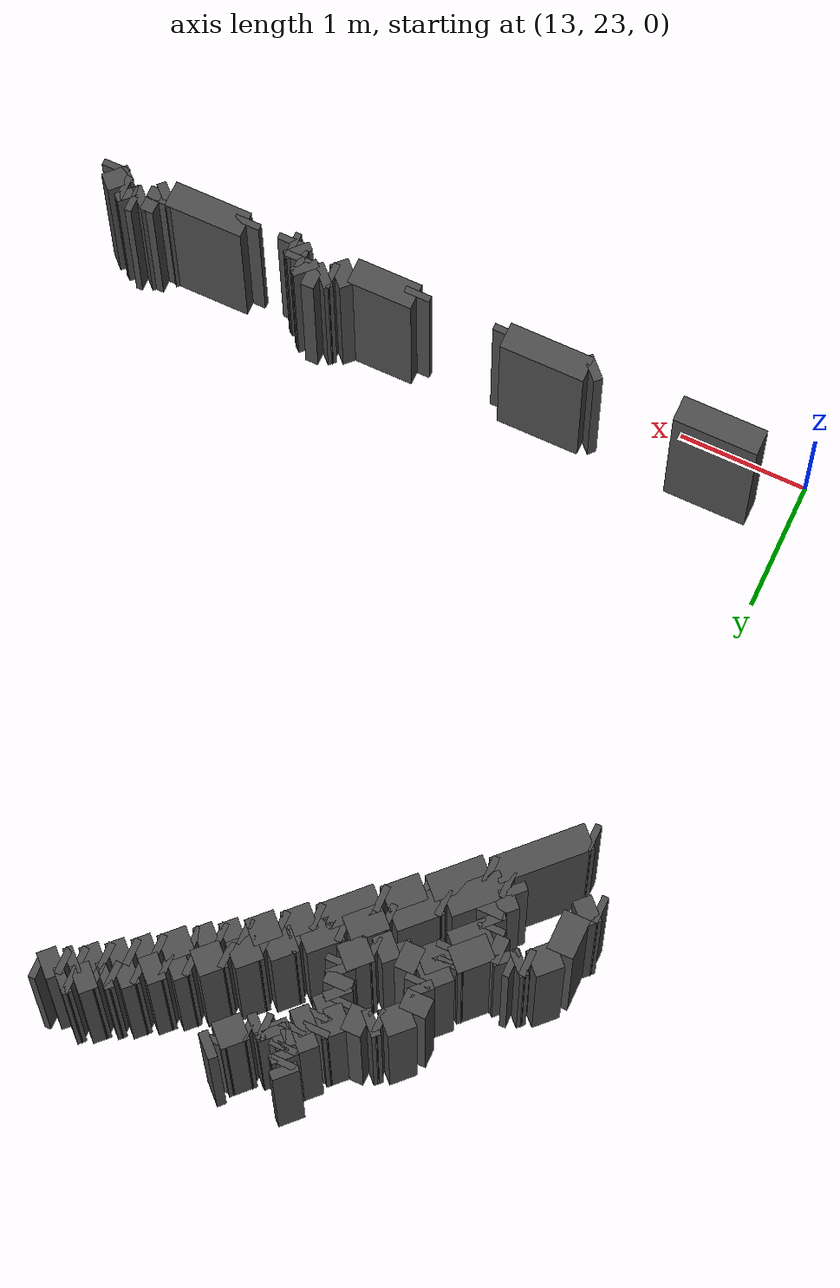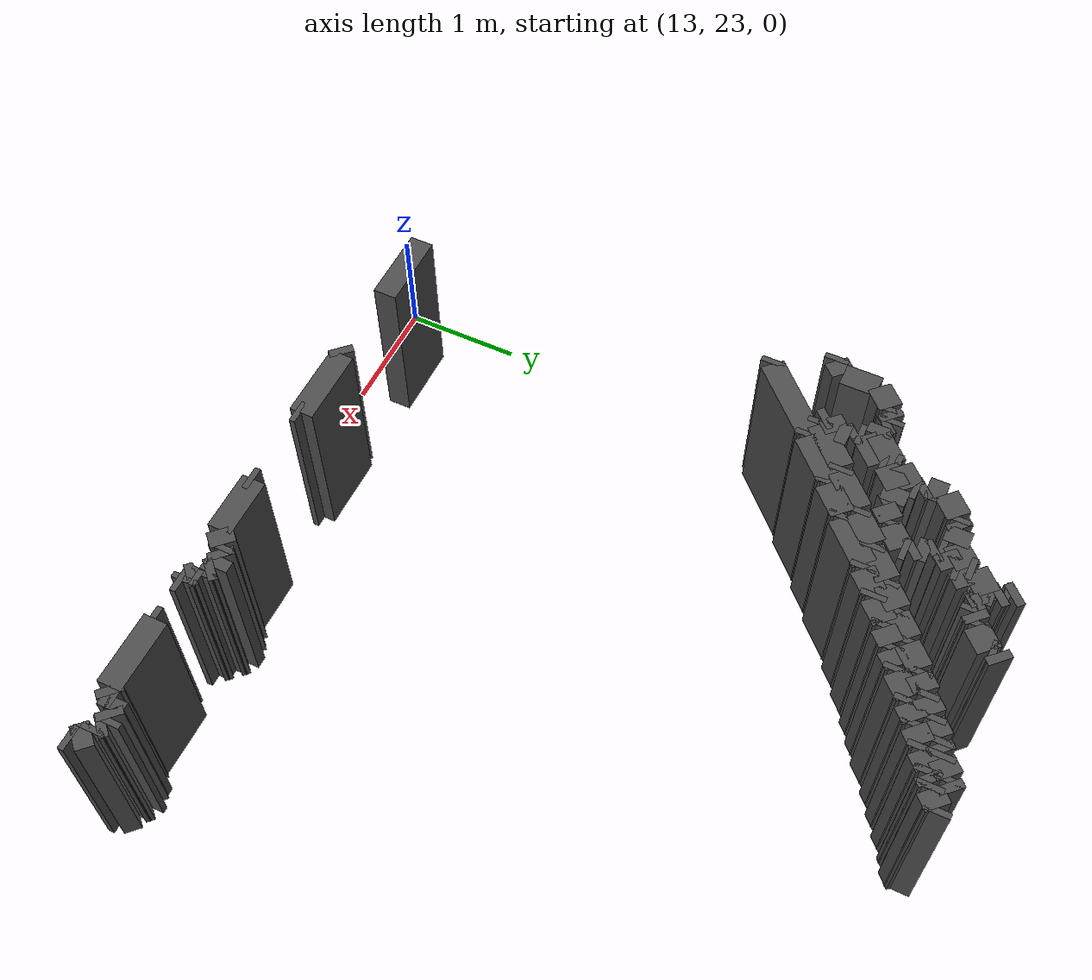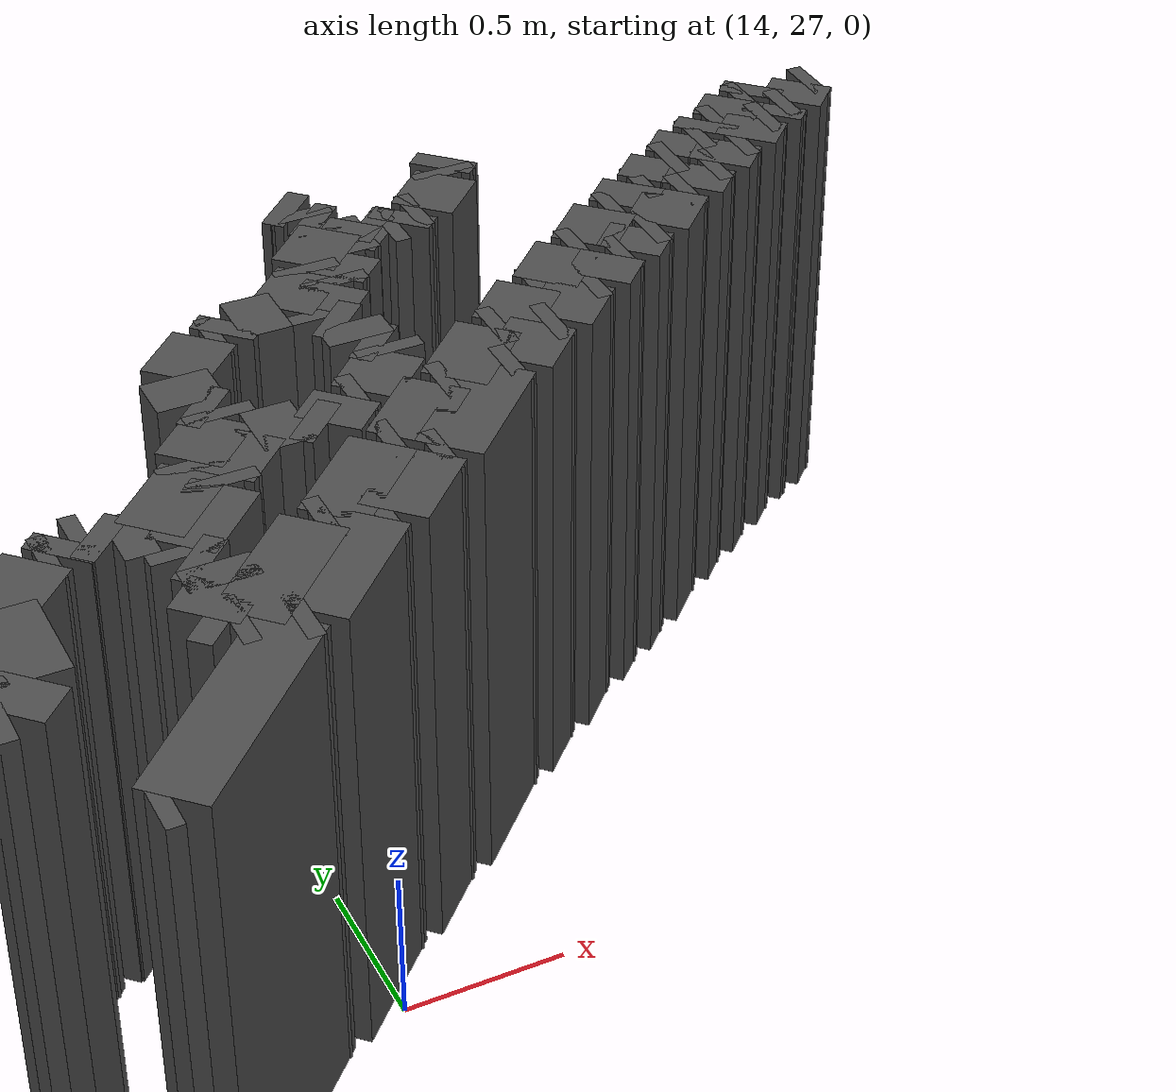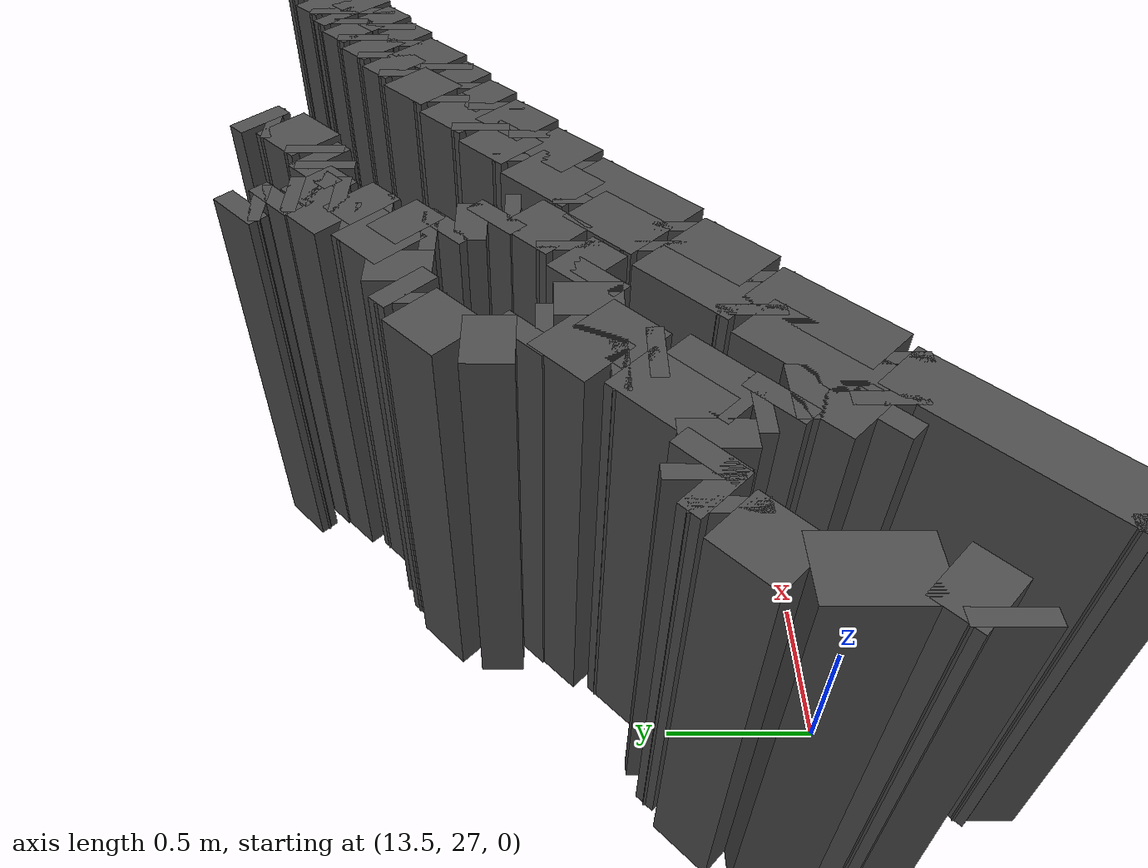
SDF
<sdf version="1.9">
 <model name="generated_walls">
  <static>true</static>
  <link name="wall_83_2">
   <pose>14.625 23.325 0.75 0 0 0.785</pose>
   <collision name="collision"><geometry><box><size>0.071 0.2 1.5</size></box></geometry></collision>
   <visual name="visual">
    <geometry><box><size>0.071 0.2 1.5</size></box></geometry>
    <material><ambient>0.3 0.3 0.3 1</ambient></material>
   </visual>
  </link>
  <link name="wall_83_3">
   <pose>14.975 23.350 0.75 0 0 0.000</pose>
   <collision name="collision"><geometry><box><size>0.650 0.2 1.5</size></box></geometry></collision>
   <visual name="visual">
    <geometry><box><size>0.650 0.2 1.5</size></box></geometry>
    <material><ambient>0.3 0.3 0.3 1</ambient></material>
   </visual>
  </link>
  <link name="wall_83_4">
   <pose>15.300 23.325 0.75 0 0 -1.571</pose>
   <collision name="collision"><geometry><box><size>0.050 0.2 1.5</size></box></geometry></collision>
   <visual name="visual">
    <geometry><box><size>0.050 0.2 1.5</size></box></geometry>
    <material><ambient>0.3 0.3 0.3 1</ambient></material>
   </visual>
  </link>
  <link name="wall_84_3">
   <pose>13.625 23.350 0.75 0 0 0.000</pose>
   <collision name="collision"><geometry><box><size>0.650 0.2 1.5</size></box></geometry></collision>
   <visual name="visual">
    <geometry><box><size>0.650 0.2 1.5</size></box></geometry>
    <material><ambient>0.3 0.3 0.3 1</ambient></material>
   </visual>
  </link>
  <link name="wall_161_332">
   <pose>12.975 26.950 0.75 0 0 0.000</pose>
   <collision name="collision"><geometry><box><size>0.050 0.2 1.5</size></box></geometry></collision>
   <visual name="visual">
    <geometry><box><size>0.050 0.2 1.5</size></box></geometry>
    <material><ambient>0.3 0.3 0.3 1</ambient></material>
   </visual>
  </link>
  <link name="wall_161_333">
   <pose>13.050 27.000 0.75 0 0 0.785</pose>
   <collision name="collision"><geometry><box><size>0.141 0.2 1.5</size></box></geometry></collision>
   <visual name="visual">
    <geometry><box><size>0.141 0.2 1.5</size></box></geometry>
    <material><ambient>0.3 0.3 0.3 1</ambient></material>
   </visual>
  </link>
  <link name="wall_161_334">
   <pose>13.100 27.200 0.75 0 0 1.571</pose>
   <collision name="collision"><geometry><box><size>0.300 0.2 1.5</size></box></geometry></collision>
   <visual name="visual">
    <geometry><box><size>0.300 0.2 1.5</size></box></geometry>
    <material><ambient>0.3 0.3 0.3 1</ambient></material>
   </visual>
  </link>
  <link name="wall_161_335">
   <pose>13.175 27.425 0.75 0 0 0.785</pose>
   <collision name="collision"><geometry><box><size>0.212 0.2 1.5</size></box></geometry></collision>
   <visual name="visual">
    <geometry><box><size>0.212 0.2 1.5</size></box></geometry>
    <material><ambient>0.3 0.3 0.3 1</ambient></material>
   </visual>
  </link>
  <link name="wall_161_336">
   <pose>13.275 27.500 0.75 0 0 0.000</pose>
   <collision name="collision"><geometry><box><size>0.050 0.2 1.5</size></box></geometry></collision>
   <visual name="visual">
    <geometry><box><size>0.050 0.2 1.5</size></box></geometry>
    <material><ambient>0.3 0.3 0.3 1</ambient></material>
   </visual>
  </link>
  <link name="wall_161_337">
   <pose>13.325 27.525 0.75 0 0 0.785</pose>
   <collision name="collision"><geometry><box><size>0.071 0.2 1.5</size></box></geometry></collision>
   <visual name="visual">
    <geometry><box><size>0.071 0.2 1.5</size></box></geometry>
    <material><ambient>0.3 0.3 0.3 1</ambient></material>
   </visual>
  </link>
  <link name="wall_161_338">
   <pose>13.375 27.550 0.75 0 0 0.000</pose>
   <collision name="collision"><geometry><box><size>0.050 0.2 1.5</size></box></geometry></collision>
   <visual name="visual">
    <geometry><box><size>0.050 0.2 1.5</size></box></geometry>
    <material><ambient>0.3 0.3 0.3 1</ambient></material>
   </visual>
  </link>
  <link name="wall_161_339">
   <pose>13.425 27.525 0.75 0 0 -0.785</pose>
   <collision name="collision"><geometry><box><size>0.071 0.2 1.5</size></box></geometry></collision>
   <visual name="visual">
    <geometry><box><size>0.071 0.2 1.5</size></box></geometry>
    <material><ambient>0.3 0.3 0.3 1</ambient></material>
   </visual>
  </link>
  <link name="wall_161_340">
   <pose>13.500 27.500 0.75 0 0 0.000</pose>
   <collision name="collision"><geometry><box><size>0.100 0.2 1.5</size></box></geometry></collision>
   <visual name="visual">
    <geometry><box><size>0.100 0.2 1.5</size></box></geometry>
    <material><ambient>0.3 0.3 0.3 1</ambient></material>
   </visual>
  </link>
  <link name="wall_161_341">
   <pose>13.650 27.600 0.75 0 0 0.785</pose>
   <collision name="collision"><geometry><box><size>0.283 0.2 1.5</size></box></geometry></collision>
   <visual name="visual">
    <geometry><box><size>0.283 0.2 1.5</size></box></geometry>
    <material><ambient>0.3 0.3 0.3 1</ambient></material>
   </visual>
  </link>
  <link name="wall_161_342">
   <pose>13.750 27.725 0.75 0 0 1.571</pose>
   <collision name="collision"><geometry><box><size>0.050 0.2 1.5</size></box></geometry></collision>
   <visual name="visual">
    <geometry><box><size>0.050 0.2 1.5</size></box></geometry>
    <material><ambient>0.3 0.3 0.3 1</ambient></material>
   </visual>
  </link>
  <link name="wall_161_343">
   <pose>13.825 27.825 0.75 0 0 0.785</pose>
   <collision name="collision"><geometry><box><size>0.212 0.2 1.5</size></box></geometry></collision>
   <visual name="visual">
    <geometry><box><size>0.212 0.2 1.5</size></box></geometry>
    <material><ambient>0.3 0.3 0.3 1</ambient></material>
   </visual>
  </link>
  <link name="wall_161_344">
   <pose>13.900 27.925 0.75 0 0 1.571</pose>
   <collision name="collision"><geometry><box><size>0.050 0.2 1.5</size></box></geometry></collision>
   <visual name="visual">
    <geometry><box><size>0.050 0.2 1.5</size></box></geometry>
    <material><ambient>0.3 0.3 0.3 1</ambient></material>
   </visual>
  </link>
  <link name="wall_161_345">
   <pose>13.875 27.975 0.75 0 0 2.356</pose>
   <collision name="collision"><geometry><box><size>0.071 0.2 1.5</size></box></geometry></collision>
   <visual name="visual">
    <geometry><box><size>0.071 0.2 1.5</size></box></geometry>
    <material><ambient>0.3 0.3 0.3 1</ambient></material>
   </visual>
  </link>
  <link name="wall_161_346">
   <pose>13.850 28.075 0.75 0 0 1.571</pose>
   <collision name="collision"><geometry><box><size>0.150 0.2 1.5</size></box></geometry></collision>
   <visual name="visual">
    <geometry><box><size>0.150 0.2 1.5</size></box></geometry>
    <material><ambient>0.3 0.3 0.3 1</ambient></material>
   </visual>
  </link>
  <link name="wall_161_347">
   <pose>13.925 28.225 0.75 0 0 0.785</pose>
   <collision name="collision"><geometry><box><size>0.212 0.2 1.5</size></box></geometry></collision>
   <visual name="visual">
    <geometry><box><size>0.212 0.2 1.5</size></box></geometry>
    <material><ambient>0.3 0.3 0.3 1</ambient></material>
   </visual>
  </link>
  <link name="wall_161_348">
   <pose>14.025 28.300 0.75 0 0 0.000</pose>
   <collision name="collision"><geometry><box><size>0.050 0.2 1.5</size></box></geometry></collision>
   <visual name="visual">
    <geometry><box><size>0.050 0.2 1.5</size></box></geometry>
    <material><ambient>0.3 0.3 0.3 1</ambient></material>
   </visual>
  </link>
  <link name="wall_161_349">
   <pose>14.075 28.325 0.75 0 0 0.785</pose>
   <collision name="collision"><geometry><box><size>0.071 0.2 1.5</size></box></geometry></collision>
   <visual name="visual">
    <geometry><box><size>0.071 0.2 1.5</size></box></geometry>
    <material><ambient>0.3 0.3 0.3 1</ambient></material>
   </visual>
  </link>
  <link name="wall_161_350">
   <pose>14.175 28.350 0.75 0 0 0.000</pose>
   <collision name="collision"><geometry><box><size>0.150 0.2 1.5</size></box></geometry></collision>
   <visual name="visual">
    <geometry><box><size>0.150 0.2 1.5</size></box></geometry>
    <material><ambient>0.3 0.3 0.3 1</ambient></material>
   </visual>
  </link>
  <link name="wall_161_351">
   <pose>14.325 28.425 0.75 0 0 0.785</pose>
   <collision name="collision"><geometry><box><size>0.212 0.2 1.5</size></box></geometry></collision>
   <visual name="visual">
    <geometry><box><size>0.212 0.2 1.5</size></box></geometry>
    <material><ambient>0.3 0.3 0.3 1</ambient></material>
   </visual>
  </link>
  <link name="wall_161_352">
   <pose>14.400 28.525 0.75 0 0 1.571</pose>
   <collision name="collision"><geometry><box><size>0.050 0.2 1.5</size></box></geometry></collision>
   <visual name="visual">
    <geometry><box><size>0.050 0.2 1.5</size></box></geometry>
    <material><ambient>0.3 0.3 0.3 1</ambient></material>
   </visual>
  </link>
  <link name="wall_161_353">
   <pose>14.475 28.625 0.75 0 0 0.785</pose>
   <collision name="collision"><geometry><box><size>0.212 0.2 1.5</size></box></geometry></collision>
   <visual name="visual">
    <geometry><box><size>0.212 0.2 1.5</size></box></geometry>
    <material><ambient>0.3 0.3 0.3 1</ambient></material>
   </visual>
  </link>
  <link name="wall_161_354">
   <pose>14.550 28.725 0.75 0 0 1.571</pose>
   <collision name="collision"><geometry><box><size>0.050 0.2 1.5</size></box></geometry></collision>
   <visual name="visual">
    <geometry><box><size>0.050 0.2 1.5</size></box></geometry>
    <material><ambient>0.3 0.3 0.3 1</ambient></material>
   </visual>
  </link>
  <link name="wall_161_355">
   <pose>14.525 28.775 0.75 0 0 2.356</pose>
   <collision name="collision"><geometry><box><size>0.071 0.2 1.5</size></box></geometry></collision>
   <visual name="visual">
    <geometry><box><size>0.071 0.2 1.5</size></box></geometry>
    <material><ambient>0.3 0.3 0.3 1</ambient></material>
   </visual>
  </link>
  <link name="wall_161_356">
   <pose>14.500 28.825 0.75 0 0 1.571</pose>
   <collision name="collision"><geometry><box><size>0.050 0.2 1.5</size></box></geometry></collision>
   <visual name="visual">
    <geometry><box><size>0.050 0.2 1.5</size></box></geometry>
    <material><ambient>0.3 0.3 0.3 1</ambient></material>
   </visual>
  </link>
  <link name="wall_161_357">
   <pose>14.475 28.875 0.75 0 0 2.356</pose>
   <collision name="collision"><geometry><box><size>0.071 0.2 1.5</size></box></geometry></collision>
   <visual name="visual">
    <geometry><box><size>0.071 0.2 1.5</size></box></geometry>
    <material><ambient>0.3 0.3 0.3 1</ambient></material>
   </visual>
  </link>
  <link name="wall_161_494">
   <pose>15.025 28.925 0.75 0 0 -2.356</pose>
   <collision name="collision"><geometry><box><size>0.071 0.2 1.5</size></box></geometry></collision>
   <visual name="visual">
    <geometry><box><size>0.071 0.2 1.5</size></box></geometry>
    <material><ambient>0.3 0.3 0.3 1</ambient></material>
   </visual>
  </link>
  <link name="wall_161_495">
   <pose>15.000 28.875 0.75 0 0 -1.571</pose>
   <collision name="collision"><geometry><box><size>0.050 0.2 1.5</size></box></geometry></collision>
   <visual name="visual">
    <geometry><box><size>0.050 0.2 1.5</size></box></geometry>
    <material><ambient>0.3 0.3 0.3 1</ambient></material>
   </visual>
  </link>
  <link name="wall_161_496">
   <pose>14.925 28.775 0.75 0 0 -2.356</pose>
   <collision name="collision"><geometry><box><size>0.212 0.2 1.5</size></box></geometry></collision>
   <visual name="visual">
    <geometry><box><size>0.212 0.2 1.5</size></box></geometry>
    <material><ambient>0.3 0.3 0.3 1</ambient></material>
   </visual>
  </link>
  <link name="wall_161_497">
   <pose>14.825 28.700 0.75 0 0 3.142</pose>
   <collision name="collision"><geometry><box><size>0.050 0.2 1.5</size></box></geometry></collision>
   <visual name="visual">
    <geometry><box><size>0.050 0.2 1.5</size></box></geometry>
    <material><ambient>0.3 0.3 0.3 1</ambient></material>
   </visual>
  </link>
  <link name="wall_161_498">
   <pose>14.775 28.675 0.75 0 0 -2.356</pose>
   <collision name="collision"><geometry><box><size>0.071 0.2 1.5</size></box></geometry></collision>
   <visual name="visual">
    <geometry><box><size>0.071 0.2 1.5</size></box></geometry>
    <material><ambient>0.3 0.3 0.3 1</ambient></material>
   </visual>
  </link>
  <link name="wall_161_499">
   <pose>14.725 28.650 0.75 0 0 3.142</pose>
   <collision name="collision"><geometry><box><size>0.050 0.2 1.5</size></box></geometry></collision>
   <visual name="visual">
    <geometry><box><size>0.050 0.2 1.5</size></box></geometry>
    <material><ambient>0.3 0.3 0.3 1</ambient></material>
   </visual>
  </link>
  <link name="wall_161_500">
   <pose>14.675 28.675 0.75 0 0 2.356</pose>
   <collision name="collision"><geometry><box><size>0.071 0.2 1.5</size></box></geometry></collision>
   <visual name="visual">
    <geometry><box><size>0.071 0.2 1.5</size></box></geometry>
    <material><ambient>0.3 0.3 0.3 1</ambient></material>
   </visual>
  </link>
  <link name="wall_161_501">
   <pose>14.600 28.650 0.75 0 0 -2.356</pose>
   <collision name="collision"><geometry><box><size>0.141 0.2 1.5</size></box></geometry></collision>
   <visual name="visual">
    <geometry><box><size>0.141 0.2 1.5</size></box></geometry>
    <material><ambient>0.3 0.3 0.3 1</ambient></material>
   </visual>
  </link>
  <link name="wall_161_502">
   <pose>14.550 28.575 0.75 0 0 -1.571</pose>
   <collision name="collision"><geometry><box><size>0.050 0.2 1.5</size></box></geometry></collision>
   <visual name="visual">
    <geometry><box><size>0.050 0.2 1.5</size></box></geometry>
    <material><ambient>0.3 0.3 0.3 1</ambient></material>
   </visual>
  </link>
  <link name="wall_161_503">
   <pose>14.500 28.500 0.75 0 0 -2.356</pose>
   <collision name="collision"><geometry><box><size>0.141 0.2 1.5</size></box></geometry></collision>
   <visual name="visual">
    <geometry><box><size>0.141 0.2 1.5</size></box></geometry>
    <material><ambient>0.3 0.3 0.3 1</ambient></material>
   </visual>
  </link>
  <link name="wall_161_504">
   <pose>14.450 28.425 0.75 0 0 -1.571</pose>
   <collision name="collision"><geometry><box><size>0.050 0.2 1.5</size></box></geometry></collision>
   <visual name="visual">
    <geometry><box><size>0.050 0.2 1.5</size></box></geometry>
    <material><ambient>0.3 0.3 0.3 1</ambient></material>
   </visual>
  </link>
  <link name="wall_161_505">
   <pose>14.400 28.350 0.75 0 0 -2.356</pose>
   <collision name="collision"><geometry><box><size>0.141 0.2 1.5</size></box></geometry></collision>
   <visual name="visual">
    <geometry><box><size>0.141 0.2 1.5</size></box></geometry>
    <material><ambient>0.3 0.3 0.3 1</ambient></material>
   </visual>
  </link>
  <link name="wall_161_506">
   <pose>14.350 28.275 0.75 0 0 -1.571</pose>
   <collision name="collision"><geometry><box><size>0.050 0.2 1.5</size></box></geometry></collision>
   <visual name="visual">
    <geometry><box><size>0.050 0.2 1.5</size></box></geometry>
    <material><ambient>0.3 0.3 0.3 1</ambient></material>
   </visual>
  </link>
  <link name="wall_161_507">
   <pose>14.375 28.225 0.75 0 0 -0.785</pose>
   <collision name="collision"><geometry><box><size>0.071 0.2 1.5</size></box></geometry></collision>
   <visual name="visual">
    <geometry><box><size>0.071 0.2 1.5</size></box></geometry>
    <material><ambient>0.3 0.3 0.3 1</ambient></material>
   </visual>
  </link>
  <link name="wall_161_508">
   <pose>14.400 28.150 0.75 0 0 -1.571</pose>
   <collision name="collision"><geometry><box><size>0.100 0.2 1.5</size></box></geometry></collision>
   <visual name="visual">
    <geometry><box><size>0.100 0.2 1.5</size></box></geometry>
    <material><ambient>0.3 0.3 0.3 1</ambient></material>
   </visual>
  </link>
  <link name="wall_161_509">
   <pose>14.425 28.075 0.75 0 0 -0.785</pose>
   <collision name="collision"><geometry><box><size>0.071 0.2 1.5</size></box></geometry></collision>
   <visual name="visual">
    <geometry><box><size>0.071 0.2 1.5</size></box></geometry>
    <material><ambient>0.3 0.3 0.3 1</ambient></material>
   </visual>
  </link>
  <link name="wall_161_510">
   <pose>14.450 28.025 0.75 0 0 -1.571</pose>
   <collision name="collision"><geometry><box><size>0.050 0.2 1.5</size></box></geometry></collision>
   <visual name="visual">
    <geometry><box><size>0.050 0.2 1.5</size></box></geometry>
    <material><ambient>0.3 0.3 0.3 1</ambient></material>
   </visual>
  </link>
  <link name="wall_161_511">
   <pose>14.375 27.925 0.75 0 0 -2.356</pose>
   <collision name="collision"><geometry><box><size>0.212 0.2 1.5</size></box></geometry></collision>
   <visual name="visual">
    <geometry><box><size>0.212 0.2 1.5</size></box></geometry>
    <material><ambient>0.3 0.3 0.3 1</ambient></material>
   </visual>
  </link>
  <link name="wall_161_512">
   <pose>14.275 27.850 0.75 0 0 3.142</pose>
   <collision name="collision"><geometry><box><size>0.050 0.2 1.5</size></box></geometry></collision>
   <visual name="visual">
    <geometry><box><size>0.050 0.2 1.5</size></box></geometry>
    <material><ambient>0.3 0.3 0.3 1</ambient></material>
   </visual>
  </link>
  <link name="wall_161_513">
   <pose>14.200 27.800 0.75 0 0 -2.356</pose>
   <collision name="collision"><geometry><box><size>0.141 0.2 1.5</size></box></geometry></collision>
   <visual name="visual">
    <geometry><box><size>0.141 0.2 1.5</size></box></geometry>
    <material><ambient>0.3 0.3 0.3 1</ambient></material>
   </visual>
  </link>
  <link name="wall_161_514">
   <pose>14.125 27.775 0.75 0 0 2.356</pose>
   <collision name="collision"><geometry><box><size>0.071 0.2 1.5</size></box></geometry></collision>
   <visual name="visual">
    <geometry><box><size>0.071 0.2 1.5</size></box></geometry>
    <material><ambient>0.3 0.3 0.3 1</ambient></material>
   </visual>
  </link>
  <link name="wall_161_515">
   <pose>14.025 27.800 0.75 0 0 3.142</pose>
   <collision name="collision"><geometry><box><size>0.150 0.2 1.5</size></box></geometry></collision>
   <visual name="visual">
    <geometry><box><size>0.150 0.2 1.5</size></box></geometry>
    <material><ambient>0.3 0.3 0.3 1</ambient></material>
   </visual>
  </link>
  <link name="wall_161_516">
   <pose>13.875 27.725 0.75 0 0 -2.356</pose>
   <collision name="collision"><geometry><box><size>0.212 0.2 1.5</size></box></geometry></collision>
   <visual name="visual">
    <geometry><box><size>0.212 0.2 1.5</size></box></geometry>
    <material><ambient>0.3 0.3 0.3 1</ambient></material>
   </visual>
  </link>
  <link name="wall_161_517">
   <pose>13.800 27.625 0.75 0 0 -1.571</pose>
   <collision name="collision"><geometry><box><size>0.050 0.2 1.5</size></box></geometry></collision>
   <visual name="visual">
    <geometry><box><size>0.050 0.2 1.5</size></box></geometry>
    <material><ambient>0.3 0.3 0.3 1</ambient></material>
   </visual>
  </link>
  <link name="wall_161_518">
   <pose>13.700 27.500 0.75 0 0 -2.356</pose>
   <collision name="collision"><geometry><box><size>0.283 0.2 1.5</size></box></geometry></collision>
   <visual name="visual">
    <geometry><box><size>0.283 0.2 1.5</size></box></geometry>
    <material><ambient>0.3 0.3 0.3 1</ambient></material>
   </visual>
  </link>
  <link name="wall_161_519">
   <pose>13.600 27.375 0.75 0 0 -1.571</pose>
   <collision name="collision"><geometry><box><size>0.050 0.2 1.5</size></box></geometry></collision>
   <visual name="visual">
    <geometry><box><size>0.050 0.2 1.5</size></box></geometry>
    <material><ambient>0.3 0.3 0.3 1</ambient></material>
   </visual>
  </link>
  <link name="wall_161_520">
   <pose>13.625 27.325 0.75 0 0 -0.785</pose>
   <collision name="collision"><geometry><box><size>0.071 0.2 1.5</size></box></geometry></collision>
   <visual name="visual">
    <geometry><box><size>0.071 0.2 1.5</size></box></geometry>
    <material><ambient>0.3 0.3 0.3 1</ambient></material>
   </visual>
  </link>
  <link name="wall_161_521">
   <pose>13.650 27.250 0.75 0 0 -1.571</pose>
   <collision name="collision"><geometry><box><size>0.100 0.2 1.5</size></box></geometry></collision>
   <visual name="visual">
    <geometry><box><size>0.100 0.2 1.5</size></box></geometry>
    <material><ambient>0.3 0.3 0.3 1</ambient></material>
   </visual>
  </link>
  <link name="wall_161_522">
   <pose>13.600 27.150 0.75 0 0 -2.356</pose>
   <collision name="collision"><geometry><box><size>0.141 0.2 1.5</size></box></geometry></collision>
   <visual name="visual">
    <geometry><box><size>0.141 0.2 1.5</size></box></geometry>
    <material><ambient>0.3 0.3 0.3 1</ambient></material>
   </visual>
  </link>
  <link name="wall_161_523">
   <pose>13.575 27.075 0.75 0 0 -0.785</pose>
   <collision name="collision"><geometry><box><size>0.071 0.2 1.5</size></box></geometry></collision>
   <visual name="visual">
    <geometry><box><size>0.071 0.2 1.5</size></box></geometry>
    <material><ambient>0.3 0.3 0.3 1</ambient></material>
   </visual>
  </link>
  <link name="wall_161_524">
   <pose>13.625 27.050 0.75 0 0 0.000</pose>
   <collision name="collision"><geometry><box><size>0.050 0.2 1.5</size></box></geometry></collision>
   <visual name="visual">
    <geometry><box><size>0.050 0.2 1.5</size></box></geometry>
    <material><ambient>0.3 0.3 0.3 1</ambient></material>
   </visual>
  </link>
  <link name="wall_161_525">
   <pose>13.800 27.200 0.75 0 0 0.785</pose>
   <collision name="collision"><geometry><box><size>0.424 0.2 1.5</size></box></geometry></collision>
   <visual name="visual">
    <geometry><box><size>0.424 0.2 1.5</size></box></geometry>
    <material><ambient>0.3 0.3 0.3 1</ambient></material>
   </visual>
  </link>
  <link name="wall_161_526">
   <pose>13.975 27.350 0.75 0 0 0.000</pose>
   <collision name="collision"><geometry><box><size>0.050 0.2 1.5</size></box></geometry></collision>
   <visual name="visual">
    <geometry><box><size>0.050 0.2 1.5</size></box></geometry>
    <material><ambient>0.3 0.3 0.3 1</ambient></material>
   </visual>
  </link>
  <link name="wall_161_527">
   <pose>14.125 27.475 0.75 0 0 0.785</pose>
   <collision name="collision"><geometry><box><size>0.354 0.2 1.5</size></box></geometry></collision>
   <visual name="visual">
    <geometry><box><size>0.354 0.2 1.5</size></box></geometry>
    <material><ambient>0.3 0.3 0.3 1</ambient></material>
   </visual>
  </link>
  <link name="wall_161_528">
   <pose>14.275 27.600 0.75 0 0 0.000</pose>
   <collision name="collision"><geometry><box><size>0.050 0.2 1.5</size></box></geometry></collision>
   <visual name="visual">
    <geometry><box><size>0.050 0.2 1.5</size></box></geometry>
    <material><ambient>0.3 0.3 0.3 1</ambient></material>
   </visual>
  </link>
  <link name="wall_161_529">
   <pose>14.400 27.700 0.75 0 0 0.785</pose>
   <collision name="collision"><geometry><box><size>0.283 0.2 1.5</size></box></geometry></collision>
   <visual name="visual">
    <geometry><box><size>0.283 0.2 1.5</size></box></geometry>
    <material><ambient>0.3 0.3 0.3 1</ambient></material>
   </visual>
  </link>
  <link name="wall_161_530">
   <pose>14.525 27.800 0.75 0 0 0.000</pose>
   <collision name="collision"><geometry><box><size>0.050 0.2 1.5</size></box></geometry></collision>
   <visual name="visual">
    <geometry><box><size>0.050 0.2 1.5</size></box></geometry>
    <material><ambient>0.3 0.3 0.3 1</ambient></material>
   </visual>
  </link>
  <link name="wall_161_531">
   <pose>14.650 27.900 0.75 0 0 0.785</pose>
   <collision name="collision"><geometry><box><size>0.283 0.2 1.5</size></box></geometry></collision>
   <visual name="visual">
    <geometry><box><size>0.283 0.2 1.5</size></box></geometry>
    <material><ambient>0.3 0.3 0.3 1</ambient></material>
   </visual>
  </link>
  <link name="wall_161_532">
   <pose>14.775 28.000 0.75 0 0 0.000</pose>
   <collision name="collision"><geometry><box><size>0.050 0.2 1.5</size></box></geometry></collision>
   <visual name="visual">
    <geometry><box><size>0.050 0.2 1.5</size></box></geometry>
    <material><ambient>0.3 0.3 0.3 1</ambient></material>
   </visual>
  </link>
  <link name="wall_161_533">
   <pose>14.875 28.075 0.75 0 0 0.785</pose>
   <collision name="collision"><geometry><box><size>0.212 0.2 1.5</size></box></geometry></collision>
   <visual name="visual">
    <geometry><box><size>0.212 0.2 1.5</size></box></geometry>
    <material><ambient>0.3 0.3 0.3 1</ambient></material>
   </visual>
  </link>
  <link name="wall_161_534">
   <pose>14.975 28.150 0.75 0 0 0.000</pose>
   <collision name="collision"><geometry><box><size>0.050 0.2 1.5</size></box></geometry></collision>
   <visual name="visual">
    <geometry><box><size>0.050 0.2 1.5</size></box></geometry>
    <material><ambient>0.3 0.3 0.3 1</ambient></material>
   </visual>
  </link>
  <link name="wall_161_535">
   <pose>15.075 28.225 0.75 0 0 0.785</pose>
   <collision name="collision"><geometry><box><size>0.212 0.2 1.5</size></box></geometry></collision>
   <visual name="visual">
    <geometry><box><size>0.212 0.2 1.5</size></box></geometry>
    <material><ambient>0.3 0.3 0.3 1</ambient></material>
   </visual>
  </link>
  <link name="wall_161_536">
   <pose>15.175 28.300 0.75 0 0 0.000</pose>
   <collision name="collision"><geometry><box><size>0.050 0.2 1.5</size></box></geometry></collision>
   <visual name="visual">
    <geometry><box><size>0.050 0.2 1.5</size></box></geometry>
    <material><ambient>0.3 0.3 0.3 1</ambient></material>
   </visual>
  </link>
  <link name="wall_161_537">
   <pose>15.275 28.375 0.75 0 0 0.785</pose>
   <collision name="collision"><geometry><box><size>0.212 0.2 1.5</size></box></geometry></collision>
   <visual name="visual">
    <geometry><box><size>0.212 0.2 1.5</size></box></geometry>
    <material><ambient>0.3 0.3 0.3 1</ambient></material>
   </visual>
  </link>
  <link name="wall_161_538">
   <pose>15.375 28.450 0.75 0 0 0.000</pose>
   <collision name="collision"><geometry><box><size>0.050 0.2 1.5</size></box></geometry></collision>
   <visual name="visual">
    <geometry><box><size>0.050 0.2 1.5</size></box></geometry>
    <material><ambient>0.3 0.3 0.3 1</ambient></material>
   </visual>
  </link>
  <link name="wall_161_539">
   <pose>15.450 28.500 0.75 0 0 0.785</pose>
   <collision name="collision"><geometry><box><size>0.141 0.2 1.5</size></box></geometry></collision>
   <visual name="visual">
    <geometry><box><size>0.141 0.2 1.5</size></box></geometry>
    <material><ambient>0.3 0.3 0.3 1</ambient></material>
   </visual>
  </link>
  <link name="wall_161_540">
   <pose>15.525 28.550 0.75 0 0 0.000</pose>
   <collision name="collision"><geometry><box><size>0.050 0.2 1.5</size></box></geometry></collision>
   <visual name="visual">
    <geometry><box><size>0.050 0.2 1.5</size></box></geometry>
    <material><ambient>0.3 0.3 0.3 1</ambient></material>
   </visual>
  </link>
  <link name="wall_161_541">
   <pose>15.600 28.600 0.75 0 0 0.785</pose>
   <collision name="collision"><geometry><box><size>0.141 0.2 1.5</size></box></geometry></collision>
   <visual name="visual">
    <geometry><box><size>0.141 0.2 1.5</size></box></geometry>
    <material><ambient>0.3 0.3 0.3 1</ambient></material>
   </visual>
  </link>
  <link name="wall_161_542">
   <pose>15.675 28.650 0.75 0 0 0.000</pose>
   <collision name="collision"><geometry><box><size>0.050 0.2 1.5</size></box></geometry></collision>
   <visual name="visual">
    <geometry><box><size>0.050 0.2 1.5</size></box></geometry>
    <material><ambient>0.3 0.3 0.3 1</ambient></material>
   </visual>
  </link>
  <link name="wall_161_543">
   <pose>15.750 28.700 0.75 0 0 0.785</pose>
   <collision name="collision"><geometry><box><size>0.141 0.2 1.5</size></box></geometry></collision>
   <visual name="visual">
    <geometry><box><size>0.141 0.2 1.5</size></box></geometry>
    <material><ambient>0.3 0.3 0.3 1</ambient></material>
   </visual>
  </link>
  <link name="wall_161_544">
   <pose>15.825 28.750 0.75 0 0 0.000</pose>
   <collision name="collision"><geometry><box><size>0.050 0.2 1.5</size></box></geometry></collision>
   <visual name="visual">
    <geometry><box><size>0.050 0.2 1.5</size></box></geometry>
    <material><ambient>0.3 0.3 0.3 1</ambient></material>
   </visual>
  </link>
  <link name="wall_161_545">
   <pose>15.875 28.775 0.75 0 0 0.785</pose>
   <collision name="collision"><geometry><box><size>0.071 0.2 1.5</size></box></geometry></collision>
   <visual name="visual">
    <geometry><box><size>0.071 0.2 1.5</size></box></geometry>
    <material><ambient>0.3 0.3 0.3 1</ambient></material>
   </visual>
  </link>
  <link name="wall_161_546">
   <pose>15.925 28.800 0.75 0 0 0.000</pose>
   <collision name="collision"><geometry><box><size>0.050 0.2 1.5</size></box></geometry></collision>
   <visual name="visual">
    <geometry><box><size>0.050 0.2 1.5</size></box></geometry>
    <material><ambient>0.3 0.3 0.3 1</ambient></material>
   </visual>
  </link>
  <link name="wall_161_547">
   <pose>16.000 28.850 0.75 0 0 0.785</pose>
   <collision name="collision"><geometry><box><size>0.141 0.2 1.5</size></box></geometry></collision>
   <visual name="visual">
    <geometry><box><size>0.141 0.2 1.5</size></box></geometry>
    <material><ambient>0.3 0.3 0.3 1</ambient></material>
   </visual>
  </link>
  <link name="wall_161_548">
   <pose>16.075 28.900 0.75 0 0 0.000</pose>
   <collision name="collision"><geometry><box><size>0.050 0.2 1.5</size></box></geometry></collision>
   <visual name="visual">
    <geometry><box><size>0.050 0.2 1.5</size></box></geometry>
    <material><ambient>0.3 0.3 0.3 1</ambient></material>
   </visual>
  </link>
  <link name="wall_161_549">
   <pose>16.125 28.925 0.75 0 0 0.785</pose>
   <collision name="collision"><geometry><box><size>0.071 0.2 1.5</size></box></geometry></collision>
   <visual name="visual">
    <geometry><box><size>0.071 0.2 1.5</size></box></geometry>
    <material><ambient>0.3 0.3 0.3 1</ambient></material>
   </visual>
  </link>
  <link name="wall_161_679">
   <pose>16.325 28.900 0.75 0 0 3.142</pose>
   <collision name="collision"><geometry><box><size>0.050 0.2 1.5</size></box></geometry></collision>
   <visual name="visual">
    <geometry><box><size>0.050 0.2 1.5</size></box></geometry>
    <material><ambient>0.3 0.3 0.3 1</ambient></material>
   </visual>
  </link>
  <link name="wall_161_680">
   <pose>16.250 28.850 0.75 0 0 -2.356</pose>
   <collision name="collision"><geometry><box><size>0.141 0.2 1.5</size></box></geometry></collision>
   <visual name="visual">
    <geometry><box><size>0.141 0.2 1.5</size></box></geometry>
    <material><ambient>0.3 0.3 0.3 1</ambient></material>
   </visual>
  </link>
  <link name="wall_161_681">
   <pose>16.175 28.800 0.75 0 0 3.142</pose>
   <collision name="collision"><geometry><box><size>0.050 0.2 1.5</size></box></geometry></collision>
   <visual name="visual">
    <geometry><box><size>0.050 0.2 1.5</size></box></geometry>
    <material><ambient>0.3 0.3 0.3 1</ambient></material>
   </visual>
  </link>
  <link name="wall_161_682">
   <pose>16.125 28.775 0.75 0 0 -2.356</pose>
   <collision name="collision"><geometry><box><size>0.071 0.2 1.5</size></box></geometry></collision>
   <visual name="visual">
    <geometry><box><size>0.071 0.2 1.5</size></box></geometry>
    <material><ambient>0.3 0.3 0.3 1</ambient></material>
   </visual>
  </link>
  <link name="wall_161_683">
   <pose>16.075 28.750 0.75 0 0 3.142</pose>
   <collision name="collision"><geometry><box><size>0.050 0.2 1.5</size></box></geometry></collision>
   <visual name="visual">
    <geometry><box><size>0.050 0.2 1.5</size></box></geometry>
    <material><ambient>0.3 0.3 0.3 1</ambient></material>
   </visual>
  </link>
  <link name="wall_161_684">
   <pose>16.000 28.700 0.75 0 0 -2.356</pose>
   <collision name="collision"><geometry><box><size>0.141 0.2 1.5</size></box></geometry></collision>
   <visual name="visual">
    <geometry><box><size>0.141 0.2 1.5</size></box></geometry>
    <material><ambient>0.3 0.3 0.3 1</ambient></material>
   </visual>
  </link>
  <link name="wall_161_685">
   <pose>15.925 28.650 0.75 0 0 3.142</pose>
   <collision name="collision"><geometry><box><size>0.050 0.2 1.5</size></box></geometry></collision>
   <visual name="visual">
    <geometry><box><size>0.050 0.2 1.5</size></box></geometry>
    <material><ambient>0.3 0.3 0.3 1</ambient></material>
   </visual>
  </link>
  <link name="wall_161_686">
   <pose>15.850 28.600 0.75 0 0 -2.356</pose>
   <collision name="collision"><geometry><box><size>0.141 0.2 1.5</size></box></geometry></collision>
   <visual name="visual">
    <geometry><box><size>0.141 0.2 1.5</size></box></geometry>
    <material><ambient>0.3 0.3 0.3 1</ambient></material>
   </visual>
  </link>
  <link name="wall_161_687">
   <pose>15.775 28.550 0.75 0 0 3.142</pose>
   <collision name="collision"><geometry><box><size>0.050 0.2 1.5</size></box></geometry></collision>
   <visual name="visual">
    <geometry><box><size>0.050 0.2 1.5</size></box></geometry>
    <material><ambient>0.3 0.3 0.3 1</ambient></material>
   </visual>
  </link>
  <link name="wall_161_688">
   <pose>15.700 28.500 0.75 0 0 -2.356</pose>
   <collision name="collision"><geometry><box><size>0.141 0.2 1.5</size></box></geometry></collision>
   <visual name="visual">
    <geometry><box><size>0.141 0.2 1.5</size></box></geometry>
    <material><ambient>0.3 0.3 0.3 1</ambient></material>
   </visual>
  </link>
  <link name="wall_161_689">
   <pose>15.625 28.450 0.75 0 0 3.142</pose>
   <collision name="collision"><geometry><box><size>0.050 0.2 1.5</size></box></geometry></collision>
   <visual name="visual">
    <geometry><box><size>0.050 0.2 1.5</size></box></geometry>
    <material><ambient>0.3 0.3 0.3 1</ambient></material>
   </visual>
  </link>
  <link name="wall_161_690">
   <pose>15.525 28.375 0.75 0 0 -2.356</pose>
   <collision name="collision"><geometry><box><size>0.212 0.2 1.5</size></box></geometry></collision>
   <visual name="visual">
    <geometry><box><size>0.212 0.2 1.5</size></box></geometry>
    <material><ambient>0.3 0.3 0.3 1</ambient></material>
   </visual>
  </link>
  <link name="wall_161_691">
   <pose>15.425 28.300 0.75 0 0 3.142</pose>
   <collision name="collision"><geometry><box><size>0.050 0.2 1.5</size></box></geometry></collision>
   <visual name="visual">
    <geometry><box><size>0.050 0.2 1.5</size></box></geometry>
    <material><ambient>0.3 0.3 0.3 1</ambient></material>
   </visual>
  </link>
  <link name="wall_161_692">
   <pose>15.350 28.250 0.75 0 0 -2.356</pose>
   <collision name="collision"><geometry><box><size>0.141 0.2 1.5</size></box></geometry></collision>
   <visual name="visual">
    <geometry><box><size>0.141 0.2 1.5</size></box></geometry>
    <material><ambient>0.3 0.3 0.3 1</ambient></material>
   </visual>
  </link>
  <link name="wall_161_693">
   <pose>15.275 28.200 0.75 0 0 3.142</pose>
   <collision name="collision"><geometry><box><size>0.050 0.2 1.5</size></box></geometry></collision>
   <visual name="visual">
    <geometry><box><size>0.050 0.2 1.5</size></box></geometry>
    <material><ambient>0.3 0.3 0.3 1</ambient></material>
   </visual>
  </link>
  <link name="wall_161_694">
   <pose>15.200 28.150 0.75 0 0 -2.356</pose>
   <collision name="collision"><geometry><box><size>0.141 0.2 1.5</size></box></geometry></collision>
   <visual name="visual">
    <geometry><box><size>0.141 0.2 1.5</size></box></geometry>
    <material><ambient>0.3 0.3 0.3 1</ambient></material>
   </visual>
  </link>
  <link name="wall_161_695">
   <pose>15.125 28.100 0.75 0 0 3.142</pose>
   <collision name="collision"><geometry><box><size>0.050 0.2 1.5</size></box></geometry></collision>
   <visual name="visual">
    <geometry><box><size>0.050 0.2 1.5</size></box></geometry>
    <material><ambient>0.3 0.3 0.3 1</ambient></material>
   </visual>
  </link>
  <link name="wall_161_696">
   <pose>15.025 28.025 0.75 0 0 -2.356</pose>
   <collision name="collision"><geometry><box><size>0.212 0.2 1.5</size></box></geometry></collision>
   <visual name="visual">
    <geometry><box><size>0.212 0.2 1.5</size></box></geometry>
    <material><ambient>0.3 0.3 0.3 1</ambient></material>
   </visual>
  </link>
  <link name="wall_161_697">
   <pose>14.925 27.950 0.75 0 0 3.142</pose>
   <collision name="collision"><geometry><box><size>0.050 0.2 1.5</size></box></geometry></collision>
   <visual name="visual">
    <geometry><box><size>0.050 0.2 1.5</size></box></geometry>
    <material><ambient>0.3 0.3 0.3 1</ambient></material>
   </visual>
  </link>
  <link name="wall_161_698">
   <pose>14.825 27.875 0.75 0 0 -2.356</pose>
   <collision name="collision"><geometry><box><size>0.212 0.2 1.5</size></box></geometry></collision>
   <visual name="visual">
    <geometry><box><size>0.212 0.2 1.5</size></box></geometry>
    <material><ambient>0.3 0.3 0.3 1</ambient></material>
   </visual>
  </link>
  <link name="wall_161_699">
   <pose>14.725 27.800 0.75 0 0 3.142</pose>
   <collision name="collision"><geometry><box><size>0.050 0.2 1.5</size></box></geometry></collision>
   <visual name="visual">
    <geometry><box><size>0.050 0.2 1.5</size></box></geometry>
    <material><ambient>0.3 0.3 0.3 1</ambient></material>
   </visual>
  </link>
  <link name="wall_161_700">
   <pose>14.550 27.650 0.75 0 0 -2.356</pose>
   <collision name="collision"><geometry><box><size>0.424 0.2 1.5</size></box></geometry></collision>
   <visual name="visual">
    <geometry><box><size>0.424 0.2 1.5</size></box></geometry>
    <material><ambient>0.3 0.3 0.3 1</ambient></material>
   </visual>
  </link>
  <link name="wall_161_701">
   <pose>14.375 27.500 0.75 0 0 3.142</pose>
   <collision name="collision"><geometry><box><size>0.050 0.2 1.5</size></box></geometry></collision>
   <visual name="visual">
    <geometry><box><size>0.050 0.2 1.5</size></box></geometry>
    <material><ambient>0.3 0.3 0.3 1</ambient></material>
   </visual>
  </link>
  <link name="wall_161_702">
   <pose>14.250 27.400 0.75 0 0 -2.356</pose>
   <collision name="collision"><geometry><box><size>0.283 0.2 1.5</size></box></geometry></collision>
   <visual name="visual">
    <geometry><box><size>0.283 0.2 1.5</size></box></geometry>
    <material><ambient>0.3 0.3 0.3 1</ambient></material>
   </visual>
  </link>
  <link name="wall_161_703">
   <pose>14.125 27.300 0.75 0 0 3.142</pose>
   <collision name="collision"><geometry><box><size>0.050 0.2 1.5</size></box></geometry></collision>
   <visual name="visual">
    <geometry><box><size>0.050 0.2 1.5</size></box></geometry>
    <material><ambient>0.3 0.3 0.3 1</ambient></material>
   </visual>
  </link>
  <link name="wall_161_704">
   <pose>13.950 27.150 0.75 0 0 -2.356</pose>
   <collision name="collision"><geometry><box><size>0.424 0.2 1.5</size></box></geometry></collision>
   <visual name="visual">
    <geometry><box><size>0.424 0.2 1.5</size></box></geometry>
    <material><ambient>0.3 0.3 0.3 1</ambient></material>
   </visual>
  </link>
  <link name="wall_161_705">
   <pose>13.775 27.000 0.75 0 0 3.142</pose>
   <collision name="collision"><geometry><box><size>0.050 0.2 1.5</size></box></geometry></collision>
   <visual name="visual">
    <geometry><box><size>0.050 0.2 1.5</size></box></geometry>
    <material><ambient>0.3 0.3 0.3 1</ambient></material>
   </visual>
  </link>
  <link name="wall_161_706">
   <pose>13.500 26.750 0.75 0 0 -2.356</pose>
   <collision name="collision"><geometry><box><size>0.707 0.2 1.5</size></box></geometry></collision>
   <visual name="visual">
    <geometry><box><size>0.707 0.2 1.5</size></box></geometry>
    <material><ambient>0.3 0.3 0.3 1</ambient></material>
   </visual>
  </link>
  <link name="wall_161_707">
   <pose>13.225 26.500 0.75 0 0 3.142</pose>
   <collision name="collision"><geometry><box><size>0.050 0.2 1.5</size></box></geometry></collision>
   <visual name="visual">
    <geometry><box><size>0.050 0.2 1.5</size></box></geometry>
    <material><ambient>0.3 0.3 0.3 1</ambient></material>
   </visual>
  </link>
  <link name="wall_161_1867">
   <pose>16.000 23.325 0.75 0 0 1.571</pose>
   <collision name="collision"><geometry><box><size>0.050 0.2 1.5</size></box></geometry></collision>
   <visual name="visual">
    <geometry><box><size>0.050 0.2 1.5</size></box></geometry>
    <material><ambient>0.3 0.3 0.3 1</ambient></material>
   </visual>
  </link>
  <link name="wall_161_1868">
   <pose>16.250 23.350 0.75 0 0 0.000</pose>
   <collision name="collision"><geometry><box><size>0.500 0.2 1.5</size></box></geometry></collision>
   <visual name="visual">
    <geometry><box><size>0.500 0.2 1.5</size></box></geometry>
    <material><ambient>0.3 0.3 0.3 1</ambient></material>
   </visual>
  </link>
  <link name="wall_161_1869">
   <pose>16.550 23.400 0.75 0 0 0.785</pose>
   <collision name="collision"><geometry><box><size>0.141 0.2 1.5</size></box></geometry></collision>
   <visual name="visual">
    <geometry><box><size>0.141 0.2 1.5</size></box></geometry>
    <material><ambient>0.3 0.3 0.3 1</ambient></material>
   </visual>
  </link>
  <link name="wall_161_1870">
   <pose>16.625 23.450 0.75 0 0 0.000</pose>
   <collision name="collision"><geometry><box><size>0.050 0.2 1.5</size></box></geometry></collision>
   <visual name="visual">
    <geometry><box><size>0.050 0.2 1.5</size></box></geometry>
    <material><ambient>0.3 0.3 0.3 1</ambient></material>
   </visual>
  </link>
  <link name="wall_161_1871">
   <pose>16.675 23.475 0.75 0 0 0.785</pose>
   <collision name="collision"><geometry><box><size>0.071 0.2 1.5</size></box></geometry></collision>
   <visual name="visual">
    <geometry><box><size>0.071 0.2 1.5</size></box></geometry>
    <material><ambient>0.3 0.3 0.3 1</ambient></material>
   </visual>
  </link>
  <link name="wall_161_1872">
   <pose>16.750 23.500 0.75 0 0 0.000</pose>
   <collision name="collision"><geometry><box><size>0.100 0.2 1.5</size></box></geometry></collision>
   <visual name="visual">
    <geometry><box><size>0.100 0.2 1.5</size></box></geometry>
    <material><ambient>0.3 0.3 0.3 1</ambient></material>
   </visual>
  </link>
  <link name="wall_161_1873">
   <pose>16.825 23.475 0.75 0 0 -0.785</pose>
   <collision name="collision"><geometry><box><size>0.071 0.2 1.5</size></box></geometry></collision>
   <visual name="visual">
    <geometry><box><size>0.071 0.2 1.5</size></box></geometry>
    <material><ambient>0.3 0.3 0.3 1</ambient></material>
   </visual>
  </link>
  <link name="wall_161_1874">
   <pose>16.875 23.450 0.75 0 0 0.000</pose>
   <collision name="collision"><geometry><box><size>0.050 0.2 1.5</size></box></geometry></collision>
   <visual name="visual">
    <geometry><box><size>0.050 0.2 1.5</size></box></geometry>
    <material><ambient>0.3 0.3 0.3 1</ambient></material>
   </visual>
  </link>
  <link name="wall_161_1875">
   <pose>16.900 23.425 0.75 0 0 -1.571</pose>
   <collision name="collision"><geometry><box><size>0.050 0.2 1.5</size></box></geometry></collision>
   <visual name="visual">
    <geometry><box><size>0.050 0.2 1.5</size></box></geometry>
    <material><ambient>0.3 0.3 0.3 1</ambient></material>
   </visual>
  </link>
  <link name="wall_161_1876">
   <pose>16.925 23.375 0.75 0 0 -0.785</pose>
   <collision name="collision"><geometry><box><size>0.071 0.2 1.5</size></box></geometry></collision>
   <visual name="visual">
    <geometry><box><size>0.071 0.2 1.5</size></box></geometry>
    <material><ambient>0.3 0.3 0.3 1</ambient></material>
   </visual>
  </link>
  <link name="wall_161_1877">
   <pose>16.975 23.350 0.75 0 0 0.000</pose>
   <collision name="collision"><geometry><box><size>0.050 0.2 1.5</size></box></geometry></collision>
   <visual name="visual">
    <geometry><box><size>0.050 0.2 1.5</size></box></geometry>
    <material><ambient>0.3 0.3 0.3 1</ambient></material>
   </visual>
  </link>
  <link name="wall_161_1878">
   <pose>17.000 23.325 0.75 0 0 -1.571</pose>
   <collision name="collision"><geometry><box><size>0.050 0.2 1.5</size></box></geometry></collision>
   <visual name="visual">
    <geometry><box><size>0.050 0.2 1.5</size></box></geometry>
    <material><ambient>0.3 0.3 0.3 1</ambient></material>
   </visual>
  </link>
  <link name="wall_161_1882">
   <pose>17.350 23.325 0.75 0 0 1.571</pose>
   <collision name="collision"><geometry><box><size>0.050 0.2 1.5</size></box></geometry></collision>
   <visual name="visual">
    <geometry><box><size>0.050 0.2 1.5</size></box></geometry>
    <material><ambient>0.3 0.3 0.3 1</ambient></material>
   </visual>
  </link>
  <link name="wall_161_1883">
   <pose>17.650 23.350 0.75 0 0 0.000</pose>
   <collision name="collision"><geometry><box><size>0.600 0.2 1.5</size></box></geometry></collision>
   <visual name="visual">
    <geometry><box><size>0.600 0.2 1.5</size></box></geometry>
    <material><ambient>0.3 0.3 0.3 1</ambient></material>
   </visual>
  </link>
  <link name="wall_161_1884">
   <pose>17.975 23.375 0.75 0 0 0.785</pose>
   <collision name="collision"><geometry><box><size>0.071 0.2 1.5</size></box></geometry></collision>
   <visual name="visual">
    <geometry><box><size>0.071 0.2 1.5</size></box></geometry>
    <material><ambient>0.3 0.3 0.3 1</ambient></material>
   </visual>
  </link>
  <link name="wall_161_1885">
   <pose>18.000 23.425 0.75 0 0 1.571</pose>
   <collision name="collision"><geometry><box><size>0.050 0.2 1.5</size></box></geometry></collision>
   <visual name="visual">
    <geometry><box><size>0.050 0.2 1.5</size></box></geometry>
    <material><ambient>0.3 0.3 0.3 1</ambient></material>
   </visual>
  </link>
  <link name="wall_161_1886">
   <pose>18.050 23.450 0.75 0 0 0.000</pose>
   <collision name="collision"><geometry><box><size>0.100 0.2 1.5</size></box></geometry></collision>
   <visual name="visual">
    <geometry><box><size>0.100 0.2 1.5</size></box></geometry>
    <material><ambient>0.3 0.3 0.3 1</ambient></material>
   </visual>
  </link>
  <link name="wall_161_1887">
   <pose>18.125 23.475 0.75 0 0 0.785</pose>
   <collision name="collision"><geometry><box><size>0.071 0.2 1.5</size></box></geometry></collision>
   <visual name="visual">
    <geometry><box><size>0.071 0.2 1.5</size></box></geometry>
    <material><ambient>0.3 0.3 0.3 1</ambient></material>
   </visual>
  </link>
  <link name="wall_161_1888">
   <pose>18.175 23.500 0.75 0 0 0.000</pose>
   <collision name="collision"><geometry><box><size>0.050 0.2 1.5</size></box></geometry></collision>
   <visual name="visual">
    <geometry><box><size>0.050 0.2 1.5</size></box></geometry>
    <material><ambient>0.3 0.3 0.3 1</ambient></material>
   </visual>
  </link>
  <link name="wall_161_1889">
   <pose>18.225 23.475 0.75 0 0 -0.785</pose>
   <collision name="collision"><geometry><box><size>0.071 0.2 1.5</size></box></geometry></collision>
   <visual name="visual">
    <geometry><box><size>0.071 0.2 1.5</size></box></geometry>
    <material><ambient>0.3 0.3 0.3 1</ambient></material>
   </visual>
  </link>
  <link name="wall_161_1890">
   <pose>18.275 23.450 0.75 0 0 0.000</pose>
   <collision name="collision"><geometry><box><size>0.050 0.2 1.5</size></box></geometry></collision>
   <visual name="visual">
    <geometry><box><size>0.050 0.2 1.5</size></box></geometry>
    <material><ambient>0.3 0.3 0.3 1</ambient></material>
   </visual>
  </link>
  <link name="wall_161_1891">
   <pose>18.350 23.400 0.75 0 0 -0.785</pose>
   <collision name="collision"><geometry><box><size>0.141 0.2 1.5</size></box></geometry></collision>
   <visual name="visual">
    <geometry><box><size>0.141 0.2 1.5</size></box></geometry>
    <material><ambient>0.3 0.3 0.3 1</ambient></material>
   </visual>
  </link>
  <link name="wall_161_1892">
   <pose>18.400 23.325 0.75 0 0 -1.571</pose>
   <collision name="collision"><geometry><box><size>0.050 0.2 1.5</size></box></geometry></collision>
   <visual name="visual">
    <geometry><box><size>0.050 0.2 1.5</size></box></geometry>
    <material><ambient>0.3 0.3 0.3 1</ambient></material>
   </visual>
  </link>
 </model>
</sdf>
